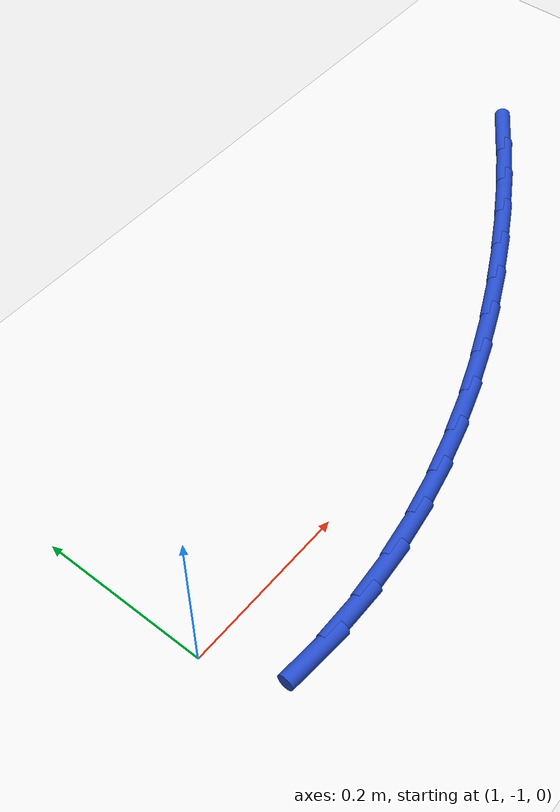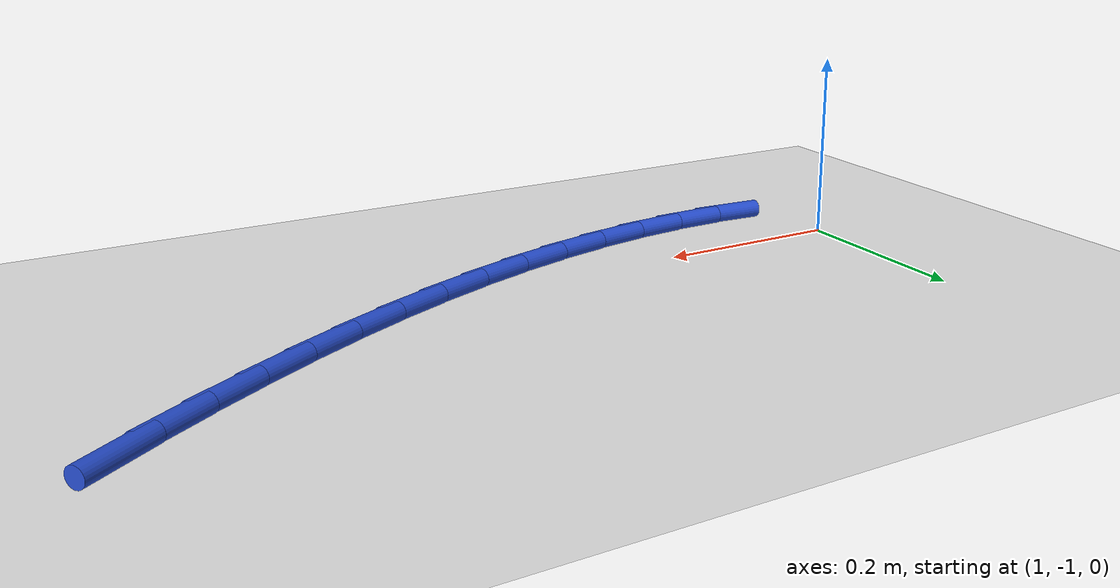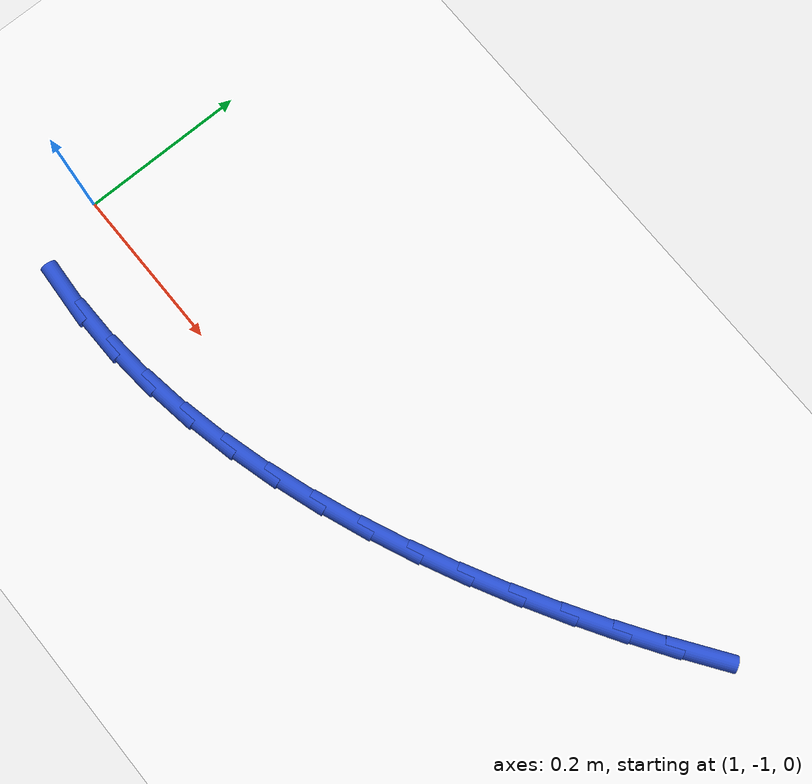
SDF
<sdf version="1.6">
 <world name="default">
  <model name="ground_plane">
   <static>1</static>
   <link name="link">
    <collision name="collision">
     <geometry><plane><normal>0 0 1</normal><size>100 100</size></plane></geometry>
     <surface><friction><ode><mu>100</mu><mu2>50</mu2></ode></friction></surface>
    </collision>
    <visual name="visual">
     <cast_shadows>0</cast_shadows>
     <geometry><plane><normal>0 0 1</normal><size>100 100</size></plane></geometry>
     <material>
      <script><uri>file://media/materials/scripts/gazebo.material</uri><name>Gazebo/WhiteGlow</name></script>
     </material>
    </visual>
   </link>
  </model>
  <model name="line">
   <link name="link_77">
    <pose>1.8153623013868636 -0.803072219201494 0.01 0 1.57 0.6127490387411502</pose>
    <collision name="collision">
     <geometry><cylinder><radius>0.01</radius><length>0.08</length></cylinder></geometry>
    </collision>
    <visual name="visual">
     <material>
      <script><name>Gazebo/Blue</name><uri>file://media/materials/scripts/gazebo.material</uri></script>
     </material>
     <geometry><cylinder><radius>0.01</radius><length>0.08</length></cylinder></geometry>
    </visual>
   </link>
   <link name="link_78">
    <pose>1.767991048475266 -0.8363750939356901 0.01 0 1.57 0.577670495930763</pose>
    <collision name="collision">
     <geometry><cylinder><radius>0.01</radius><length>0.08</length></cylinder></geometry>
    </collision>
    <visual name="visual">
     <material>
      <script><name>Gazebo/Blue</name><uri>file://media/materials/scripts/gazebo.material</uri></script>
     </material>
     <geometry><cylinder><radius>0.01</radius><length>0.08</length></cylinder></geometry>
    </visual>
   </link>
   <link name="link_79">
    <pose>1.7190889621931826 -0.8682516295146823 0.01 0 1.57 0.5474699234097562</pose>
    <collision name="collision">
     <geometry><cylinder><radius>0.01</radius><length>0.08</length></cylinder></geometry>
    </collision>
    <visual name="visual">
     <material>
      <script><name>Gazebo/Blue</name><uri>file://media/materials/scripts/gazebo.material</uri></script>
     </material>
     <geometry><cylinder><radius>0.01</radius><length>0.08</length></cylinder></geometry>
    </visual>
   </link>
   <link name="link_80">
    <pose>1.6688835665423059 -0.8988583182629234 0.01 0 1.57 0.5176713573931943</pose>
    <collision name="collision">
     <geometry><cylinder><radius>0.01</radius><length>0.08</length></cylinder></geometry>
    </collision>
    <visual name="visual">
     <material>
      <script><name>Gazebo/Blue</name><uri>file://media/materials/scripts/gazebo.material</uri></script>
     </material>
     <geometry><cylinder><radius>0.01</radius><length>0.08</length></cylinder></geometry>
    </visual>
   </link>
   <link name="link_81">
    <pose>1.6175410496899254 -0.928096541936794 0.01 0 1.57 0.48522158995647546</pose>
    <collision name="collision">
     <geometry><cylinder><radius>0.01</radius><length>0.08</length></cylinder></geometry>
    </collision>
    <visual name="visual">
     <material>
      <script><name>Gazebo/Blue</name><uri>file://media/materials/scripts/gazebo.material</uri></script>
     </material>
     <geometry><cylinder><radius>0.01</radius><length>0.08</length></cylinder></geometry>
    </visual>
   </link>
   <link name="link_82">
    <pose>1.5651874747936487 -0.9557007926740072 0.01 0 1.57 0.44976219628375635</pose>
    <collision name="collision">
     <geometry><cylinder><radius>0.01</radius><length>0.08</length></cylinder></geometry>
    </collision>
    <visual name="visual">
     <material>
      <script><name>Gazebo/Blue</name><uri>file://media/materials/scripts/gazebo.material</uri></script>
     </material>
     <geometry><cylinder><radius>0.01</radius><length>0.08</length></cylinder></geometry>
    </visual>
   </link>
   <link name="link_83">
    <pose>1.511948210947787 -0.9814026758351916 0.01 0 1.57 0.4109531329428356</pose>
    <collision name="collision">
     <geometry><cylinder><radius>0.01</radius><length>0.08</length></cylinder></geometry>
    </collision>
    <visual name="visual">
     <material>
      <script><name>Gazebo/Blue</name><uri>file://media/materials/scripts/gazebo.material</uri></script>
     </material>
     <geometry><cylinder><radius>0.01</radius><length>0.08</length></cylinder></geometry>
    </visual>
   </link>
   <link name="link_84">
    <pose>1.4579486272466522 -1.0049337967809737 0.01 0 1.57 0.3684277866700863</pose>
    <collision name="collision">
     <geometry><cylinder><radius>0.01</radius><length>0.08</length></cylinder></geometry>
    </collision>
    <visual name="visual">
     <material>
      <script><name>Gazebo/Blue</name><uri>file://media/materials/scripts/gazebo.material</uri></script>
     </material>
     <geometry><cylinder><radius>0.01</radius><length>0.08</length></cylinder></geometry>
    </visual>
   </link>
   <link name="link_85">
    <pose>1.4033140927845553 -1.0260257608719818 0.01 0 1.57 0.3218001780641554</pose>
    <collision name="collision">
     <geometry><cylinder><radius>0.01</radius><length>0.08</length></cylinder></geometry>
    </collision>
    <visual name="visual">
     <material>
      <script><name>Gazebo/Blue</name><uri>file://media/materials/scripts/gazebo.material</uri></script>
     </material>
     <geometry><cylinder><radius>0.01</radius><length>0.08</length></cylinder></geometry>
    </visual>
   </link>
   <link name="link_86">
    <pose>1.34816997665581 -1.044410173468843 0.01 0 1.57 0.2706781711743575</pose>
    <collision name="collision">
     <geometry><cylinder><radius>0.01</radius><length>0.08</length></cylinder></geometry>
    </collision>
    <visual name="visual">
     <material>
      <script><name>Gazebo/Blue</name><uri>file://media/materials/scripts/gazebo.material</uri></script>
     </material>
     <geometry><cylinder><radius>0.01</radius><length>0.08</length></cylinder></geometry>
    </visual>
   </link>
   <link name="link_87">
    <pose>1.292641647954727 -1.059818639932184 0.01 0 1.57 0.21468499631067994</pose>
    <collision name="collision">
     <geometry><cylinder><radius>0.01</radius><length>0.08</length></cylinder></geometry>
    </collision>
    <visual name="visual">
     <material>
      <script><name>Gazebo/Blue</name><uri>file://media/materials/scripts/gazebo.material</uri></script>
     </material>
     <geometry><cylinder><radius>0.01</radius><length>0.08</length></cylinder></geometry>
    </visual>
   </link>
   <link name="link_88">
    <pose>1.2368544757756181 -1.071982765622633 0.01 0 1.57 0.15349146813475364</pose>
    <collision name="collision">
     <geometry><cylinder><radius>0.01</radius><length>0.08</length></cylinder></geometry>
    </collision>
    <visual name="visual">
     <material>
      <script><name>Gazebo/Blue</name><uri>file://media/materials/scripts/gazebo.material</uri></script>
     </material>
     <geometry><cylinder><radius>0.01</radius><length>0.08</length></cylinder></geometry>
    </visual>
   </link>
   <link name="link_89">
    <pose>1.1809338292127949 -1.0806341559008175 0.01 0 1.57 0.08686061418223308</pose>
    <collision name="collision">
     <geometry><cylinder><radius>0.01</radius><length>0.08</length></cylinder></geometry>
    </collision>
    <visual name="visual">
     <material>
      <script><name>Gazebo/Blue</name><uri>file://media/materials/scripts/gazebo.material</uri></script>
     </material>
     <geometry><cylinder><radius>0.01</radius><length>0.08</length></cylinder></geometry>
    </visual>
   </link>
   <link name="link_90">
    <pose>1.1250050773605704 -1.0855044161273644 0.01 0 1.57 0.014704434698696938</pose>
    <collision name="collision">
     <geometry><cylinder><radius>0.01</radius><length>0.08</length></cylinder></geometry>
    </collision>
    <visual name="visual">
     <material>
      <script><name>Gazebo/Blue</name><uri>file://media/materials/scripts/gazebo.material</uri></script>
     </material>
     <geometry><cylinder><radius>0.01</radius><length>0.08</length></cylinder></geometry>
    </visual>
   </link>
   <link name="link_91">
    <pose>1.069193589313256 -1.0863251516629011 0.01 0 1.57 -0.06280496535105787</pose>
    <collision name="collision">
     <geometry><cylinder><radius>0.01</radius><length>0.08</length></cylinder></geometry>
    </collision>
    <visual name="visual">
     <material>
      <script><name>Gazebo/Blue</name><uri>file://media/materials/scripts/gazebo.material</uri></script>
     </material>
     <geometry><cylinder><radius>0.01</radius><length>0.08</length></cylinder></geometry>
    </visual>
   </link>
  </model>
 </world>
</sdf>
